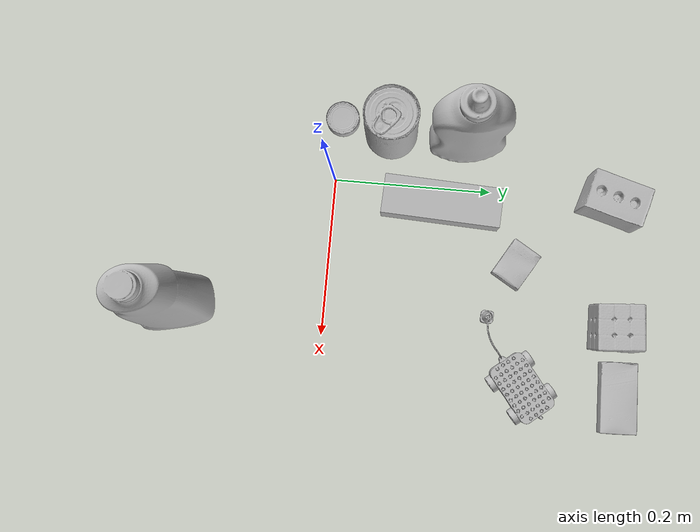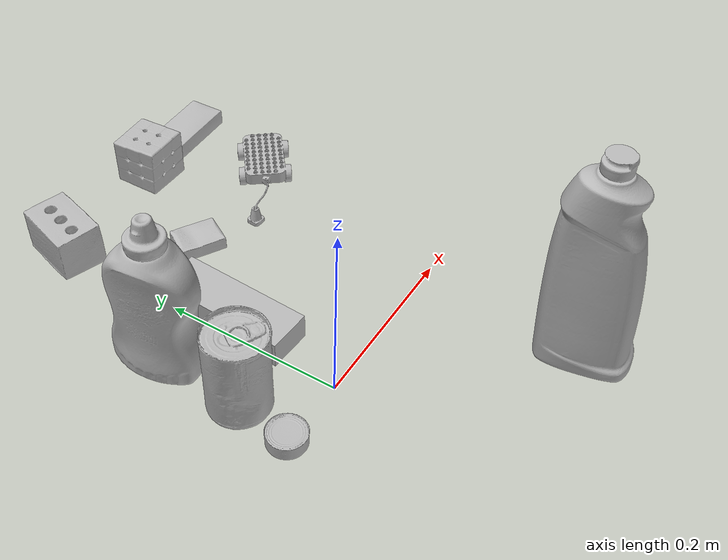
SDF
<sdf version="1.4">
  <world name="default">
    <light name="light1" type="point">
      <pose>0 0 1 0 0 0</pose>
      <diffuse>3 3 3 1</diffuse>
      <specular>3 3 3 1</specular>
    </light>
    <light name="light2" type="point">
      <pose>0 0.5 2 0 0 0</pose>
      <diffuse>1 1 1 1</diffuse>
      <specular>1 1 1 1</specular>
    </light>
    <light name="light3" type="point">
      <pose>0 0.5 2 0 0 0</pose>
      <diffuse>3 3 3 1</diffuse>
      <specular>3 3 3 1</specular>
    </light>
    <scene>
      <ambient>0.7 0.7 0.7</ambient>
    </scene>
    <model name="bottle1">
      <link name="link_bottle1">
        <collision name="default">
          <geometry>
            <mesh>
              <uri>model://bleach_cleanser/collision_meshes/collision.obj</uri>
              <scale>1.0 1.0 1.0</scale>
            </mesh>
          </geometry>
          <surface>
            <friction>
              <ode>
                <mu>0.5</mu>
                <mu2>0.5</mu2>
              </ode>
            </friction>
          <contact>
        <ode>
            <max_vel>0</max_vel>
            <min_depth>0.0001</min_depth>
            <kp>1e8</kp>
        </ode>
    </contact></surface>
        </collision>
        <visual name="default">
          <geometry>
            <mesh>
              <uri>model://bleach_cleanser/visual_meshes/visual.dae</uri>
              <scale>1.0 1.0 1.0</scale>
            </mesh>
          </geometry>
        </visual>
        <inertial>
          <mass>1.2697166204452515</mass>
          <pose>0.00012193183647468686 0.003783883061259985 -0.02442161738872528 -0.07381670616315505 0.00042011510954057825 -0.0068750724928957506</pose>
          <inertia>
            <ixx>0.0061798943</ixx>
            <iyy>0.0057587572</iyy>
            <izz>0.0010566014</izz>
            <ixy>0</ixy>
            <ixz>0</ixz>
            <iyz>0</iyz>
          </inertia>
        </inertial>
      </link>
      <pose>0.17367534339427948 -0.1839861273765564 0.12578411400318146 -0.00019866578127023535 1.782489485340579e-05 0.20416125882958575</pose>
    </model>
    <model name="bottle2">
      <link name="link_bottle2">
        <collision name="default">
          <geometry>
            <mesh>
              <uri>model://mustard_bottle/collision_meshes/collision.obj</uri>
              <scale>1.0 1.0 1.0</scale>
            </mesh>
          </geometry>
          <surface>
            <friction>
              <ode>
                <mu>0.5</mu>
                <mu2>0.5</mu2>
              </ode>
            </friction>
          <contact>
        <ode>
            <max_vel>0</max_vel>
            <min_depth>0.0001</min_depth>
            <kp>1e8</kp>
        </ode>
    </contact></surface>
        </collision>
        <visual name="default">
          <geometry>
            <mesh>
              <uri>model://mustard_bottle/visual_meshes/visual.dae</uri>
              <scale>1.0 1.0 1.0</scale>
            </mesh>
          </geometry>
        </visual>
        <inertial>
          <mass>0.7653017640113831</mass>
          <pose>0.000503245391882956 -0.00015647402324248105 -0.01747579500079155 0.0004182327658992807 0.0009465785893850277 0.024853714910462506</pose>
          <inertia>
            <ixx>0.0021251384</ixx>
            <iyy>0.0018646289</iyy>
            <izz>0.0005600813</izz>
            <ixy>0</ixy>
            <ixz>0</ixz>
            <iyz>0</iyz>
          </inertia>
        </inertial>
      </link>
      <pose>-0.06334447860717773 0.16339623928070068 0.09583088755607605 -0.012050347808241546 -0.004890348266113955 -3.0426309927143906</pose>
    </model>
    <model name="toy1">
      <link name="link_toy1">
        <collision name="default">
          <geometry>
            <mesh>
              <uri>model://g_lego_duplo/collision_meshes/collision.obj</uri>
              <scale>0.5 0.5 0.5</scale>
            </mesh>
          </geometry>
          <surface>
            <friction>
              <ode>
                <mu>0.5</mu>
                <mu2>0.5</mu2>
              </ode>
            </friction>
          <contact>
        <ode>
            <max_vel>0</max_vel>
            <min_depth>0.0001</min_depth>
            <kp>1e8</kp>
        </ode>
    </contact></surface>
        </collision>
        <visual name="default">
          <geometry>
            <mesh>
              <uri>model://g_lego_duplo/visual_meshes/visual.dae</uri>
              <scale>0.5 0.5 0.5</scale>
            </mesh>
          </geometry>
        </visual>
        <inertial>
          <mass>0.058442164212465286</mass>
          <pose>-0.025023842230439186 0.0008777315961197019 0.0019403378246352077 0.010962970283690966 0.0381082459421261 -0.09653034831594848</pose>
          <inertia>
            <ixx>2.1170836e-05</ixx>
            <iyy>6.4006235e-05</iyy>
            <izz>8.007422e-05</izz>
            <ixy>0</ixy>
            <ixz>0</ixz>
            <iyz>0</iyz>
          </inertia>
        </inertial>
      </link>
      <pose>0.21971721947193146 0.23725950717926025 0.014964771457016468 0.002237841209709201 -0.004215009225904769 -2.4748022503074996</pose>
    </model>
    <model name="toy2">
      <link name="link_toy2">
        <collision name="default">
          <geometry>
            <mesh>
              <uri>model://foam_brick/collision_meshes/collision.obj</uri>
              <scale>1.0 1.0 1.0</scale>
            </mesh>
          </geometry>
          <surface>
            <friction>
              <ode>
                <mu>0.5</mu>
                <mu2>0.5</mu2>
              </ode>
            </friction>
          <contact>
        <ode>
            <max_vel>0</max_vel>
            <min_depth>0.0001</min_depth>
            <kp>1e8</kp>
        </ode>
    </contact></surface>
        </collision>
        <visual name="default">
          <geometry>
            <mesh>
              <uri>model://foam_brick/visual_meshes/visual.dae</uri>
              <scale>1.0 1.0 1.0</scale>
            </mesh>
          </geometry>
        </visual>
        <inertial>
          <mass>0.20487983524799347</mass>
          <pose>-0.0002522472059354186 0.0003458437859080732 -0.0002532101352699101 -0.2940200921298176 0.01727444945267686 -0.0007449878655710941</pose>
          <inertia>
            <ixx>8.9495355e-05</ixx>
            <iyy>0.0001428839</iyy>
            <izz>0.00014469978</izz>
            <ixy>0</ixy>
            <ixz>0</ixz>
            <iyz>0</iyz>
          </inertia>
        </inertial>
      </link>
      <pose>0.002782736672088504 0.35284140706062317 0.025922799482941628 0.013417065456709348 0.004152421678758451 -1.8527200117717657</pose>
    </model>
    <model name="can1">
      <link name="link_can1">
        <collision name="default">
          <geometry>
            <mesh>
              <uri>model://tuna_fish_can/collision_meshes/collision.obj</uri>
              <scale>0.5 0.5 0.5</scale>
            </mesh>
          </geometry>
          <surface>
            <friction>
              <ode>
                <mu>0.5</mu>
                <mu2>0.5</mu2>
              </ode>
            </friction>
          <contact>
        <ode>
            <max_vel>0</max_vel>
            <min_depth>0.0001</min_depth>
            <kp>1e8</kp>
        </ode>
    </contact></surface>
        </collision>
        <visual name="default">
          <geometry>
            <mesh>
              <uri>model://tuna_fish_can/visual_meshes/visual.dae</uri>
              <scale>0.5 0.5 0.5</scale>
            </mesh>
          </geometry>
        </visual>
        <inertial>
          <mass>0.012491201050579548</mass>
          <pose>-2.036202567978762e-05 -7.256427124957554e-06 -0.0005269025568850338 -0.0017944782936896576 0.0001716245920406042 0.24054207470378652</pose>
          <inertia>
            <ixx>1.6888293e-06</ixx>
            <iyy>1.6817903e-06</iyy>
            <izz>2.889828e-06</izz>
            <ixy>0</ixy>
            <ixz>0</ixz>
            <iyz>0</iyz>
          </inertia>
        </inertial>
      </link>
      <pose>-0.07828257232904434 0.0035062620881944895 0.008520000614225864 -1.4245473437363535e-08 9.507026640916061e-09 -0.4817869317116789</pose>
    </model>
    <model name="can2">
      <link name="link_can2">
        <collision name="default">
          <geometry>
            <mesh>
              <uri>model://tomato_soup_can/collision_meshes/collision.obj</uri>
              <scale>1.0 1.0 1.0</scale>
            </mesh>
          </geometry>
          <surface>
            <friction>
              <ode>
                <mu>0.5</mu>
                <mu2>0.5</mu2>
              </ode>
            </friction>
          <contact>
        <ode>
            <max_vel>0</max_vel>
            <min_depth>0.0001</min_depth>
            <kp>1e8</kp>
        </ode>
    </contact></surface>
        </collision>
        <visual name="default">
          <geometry>
            <mesh>
              <uri>model://tomato_soup_can/visual_meshes/visual.dae</uri>
              <scale>1.0 1.0 1.0</scale>
            </mesh>
          </geometry>
        </visual>
        <inertial>
          <mass>0.1827235370874405</mass>
          <pose>0.00012652271834667772 0.00010805515921674669 -0.0017973986687138677 0.007020070640758328 0.00042299385100205743 -0.009903366123441316</pose>
          <inertia>
            <ixx>0.00020034082</ixx>
            <iyy>0.00019918295</iyy>
            <izz>0.00010383482</izz>
            <ixy>0</ixy>
            <ixz>0</ixz>
            <iyz>0</iyz>
          </inertia>
        </inertial>
      </link>
      <pose>-0.06513676047325134 0.06720250844955444 0.05127401277422905 -5.11111220168866e-07 -9.721979098471188e-07 0.6928656211035605</pose>
    </model>
    <model name="box1">
      <link name="link_box1">
        <collision name="default">
          <geometry>
            <mesh>
              <uri>model://jenga/collision_meshes/collision.obj</uri>
              <scale>1.0 1.0 1.0</scale>
            </mesh>
          </geometry>
          <surface>
            <friction>
              <ode>
                <mu>0.5</mu>
                <mu2>0.5</mu2>
              </ode>
            </friction>
          <contact>
        <ode>
            <max_vel>0</max_vel>
            <min_depth>0.0001</min_depth>
            <kp>1e8</kp>
        </ode>
    </contact></surface>
        </collision>
        <visual name="default">
          <geometry>
            <mesh>
              <uri>model://jenga/visual_meshes/visual.dae</uri>
              <scale>1.0 1.0 1.0</scale>
            </mesh>
          </geometry>
        </visual>
        <inertial>
          <mass>0.23032541573047638</mass>
          <pose>-2.502855807051674e-07 -0.00010250010382151231 -4.0923401684267446e-05 0.0 -7.342154049184251e-07 0.0</pose>
          <inertia>
            <ixx>6.3736625e-05</ixx>
            <iyy>0.00043187768</iyy>
            <izz>0.00046106614</izz>
            <ixy>0</ixy>
            <ixz>0</ixz>
            <iyz>0</iyz>
          </inertia>
        </inertial>
      </link>
      <pose>0.020674552768468857 0.1383163034915924 0.014999997802078724 2.954020228830156e-09 7.727613802572546e-09 1.520925874865037</pose>
    </model>
    <model name="box2">
      <link name="link_box2">
        <collision name="default">
          <geometry>
            <mesh>
              <uri>model://cracker_box/collision_meshes/collision.obj</uri>
              <scale>0.25 0.25 0.25</scale>
            </mesh>
          </geometry>
          <surface>
            <friction>
              <ode>
                <mu>0.5</mu>
                <mu2>0.5</mu2>
              </ode>
            </friction>
          <contact>
        <ode>
            <max_vel>0</max_vel>
            <min_depth>0.0001</min_depth>
            <kp>1e8</kp>
        </ode>
    </contact></surface>
        </collision>
        <visual name="default">
          <geometry>
            <mesh>
              <uri>model://cracker_box/visual_meshes/visual.dae</uri>
              <scale>0.25 0.25 0.25</scale>
            </mesh>
          </geometry>
        </visual>
        <inertial>
          <mass>0.037928901612758636</mass>
          <pose>0.0002366034168517217 6.358561222441494e-05 -0.000425738311605528 -0.00031620771242973385 -0.011106489600347247 0.002546794536796529</pose>
          <inertia>
            <ixx>6.029637e-06</ixx>
            <iyy>9.956116e-06</iyy>
            <izz>1.420829e-05</izz>
            <ixy>0</ixy>
            <ixz>0</ixz>
            <iyz>0</iyz>
          </inertia>
        </inertial>
      </link>
      <pose>0.09176019579172134 0.23835010826587677 0.009120449423789978 -0.011787888874707995 -0.007367187742746265 -0.5457141114954539</pose>
    </model>
    <model name="box3">
      <link name="link_box3">
        <collision name="default">
          <geometry>
            <mesh>
              <uri>model://sugar_box/collision_meshes/collision.obj</uri>
              <scale>0.5 0.5 0.5</scale>
            </mesh>
          </geometry>
          <surface>
            <friction>
              <ode>
                <mu>0.5</mu>
                <mu2>0.5</mu2>
              </ode>
            </friction>
          <contact>
        <ode>
            <max_vel>0</max_vel>
            <min_depth>0.0001</min_depth>
            <kp>1e8</kp>
        </ode>
    </contact></surface>
        </collision>
        <visual name="default">
          <geometry>
            <mesh>
              <uri>model://sugar_box/visual_meshes/visual.dae</uri>
              <scale>0.5 0.5 0.5</scale>
            </mesh>
          </geometry>
        </visual>
        <inertial>
          <mass>0.11577744781970978</mass>
          <pose>0.0005171863595023751 1.9245549992774613e-05 -0.00018182402709499002 -0.0004046260967602003 0.0010506636382171825 0.002615378323343388</pose>
          <inertia>
            <ixx>2.4116362e-05</ixx>
            <iyy>7.7949044e-05</iyy>
            <izz>9.3314295e-05</izz>
            <ixy>0</ixy>
            <ixz>0</ixz>
            <iyz>0</iyz>
          </inertia>
        </inertial>
      </link>
      <pose>0.2468767762184143 0.37458285689353943 0.011399301700294018 0.0007744677260536385 -0.02343298693106272 0.020858271990418994</pose>
    </model>
    <model name="box4">
      <link name="link_box4">
        <collision name="default">
          <geometry>
            <mesh>
              <uri>model://rubiks_cube/collision_meshes/collision.obj</uri>
              <scale>1.0 1.0 1.0</scale>
            </mesh>
          </geometry>
          <surface>
            <friction>
              <ode>
                <mu>0.5</mu>
                <mu2>0.5</mu2>
              </ode>
            </friction>
          <contact>
        <ode>
            <max_vel>0</max_vel>
            <min_depth>0.0001</min_depth>
            <kp>1e8</kp>
        </ode>
    </contact></surface>
        </collision>
        <visual name="default">
          <geometry>
            <mesh>
              <uri>model://rubiks_cube/visual_meshes/visual.dae</uri>
              <scale>1.0 1.0 1.0</scale>
            </mesh>
          </geometry>
        </visual>
        <inertial>
          <mass>0.277982622385025</mass>
          <pose>2.6721041649580002e-05 5.2569666877388954e-05 -7.264316082000732e-06 -0.05467259342135701 -0.09814005995908277 -0.03445491653702878</pose>
          <inertia>
            <ixx>0.00015360407</ixx>
            <iyy>0.00015288773</iyy>
            <izz>0.00015487692</izz>
            <ixy>0</ixy>
            <ixz>0</ixz>
            <iyz>0</iyz>
          </inertia>
        </inertial>
      </link>
      <pose>0.1618420034646988 0.3636918365955353 0.02867894433438778 -3.747349756963236e-06 -1.3091668795787434e-06 1.618037329602706</pose>
    </model>
  <physics type="ode">
      <max_contacts>50</max_contacts>
      <ode>
        <solver>
          <type>quick</type>
          <iters>75</iters>
        </solver>
        <constraints>
          <contact_max_correcting_vel>0</contact_max_correcting_vel>
          <contact_surface_layer>0</contact_surface_layer>
        </constraints>
      </ode>
    </physics></world>
</sdf>
